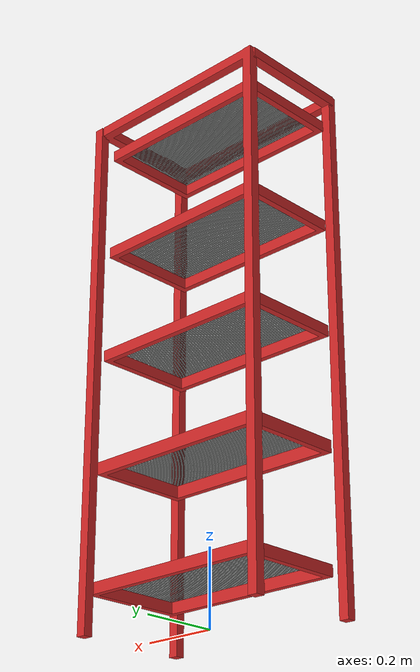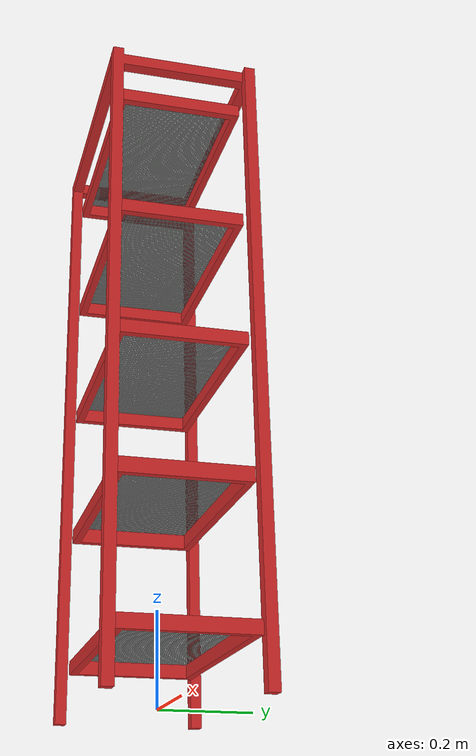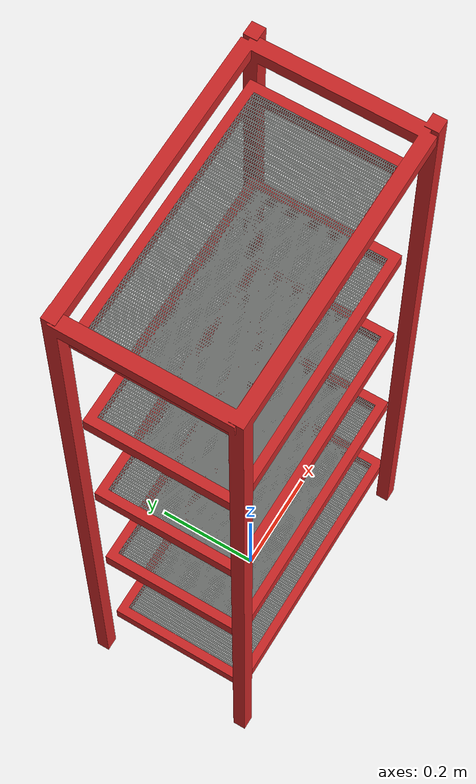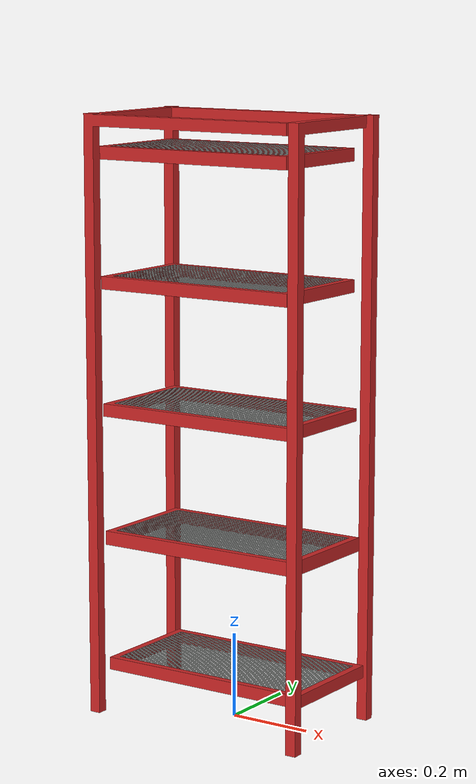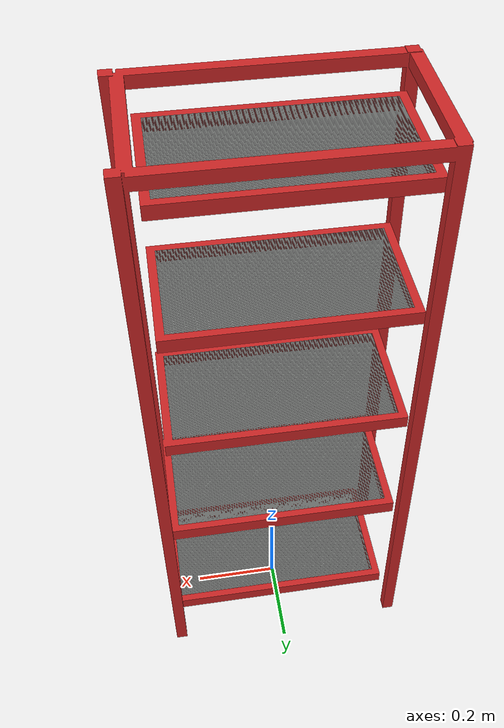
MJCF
<?xml version='1.0' encoding='utf-8'?>
<mujoco model="a0aa8e0c_static_asset_visual_01pct">
  <compiler angle="radian" autolimits="true" meshdir="." texturedir="." />
  <option timestep="0.002" gravity="0 0 -9.81" />
  <default>
    <default class="rack_collision">
      <geom type="box" group="3" rgba="0.85 0.15 0.10 0" contype="1" conaffinity="1" condim="3" friction="0.8 0.08 0.002" />
    </default>
  </default>
  <asset>
    <texture name="object_albedo" type="2d" file="texture_diffuse.png" />
    <material name="object_material" texture="object_albedo" specular="0.25" shininess="0.35" rgba="1 1 1 1" />
    <mesh name="object_visual" file="base_visual_01pct_frame.obj" scale="0.7240948814 0.7421052632 0.6851851852" />
    <mesh name="object_visual_grid" file="base_visual_01pct_grid.obj" scale="0.7240948814 0.7421052632 0.6851851852" />
    <mesh name="object_visual_rims" file="base_visual_01pct_rims.obj" scale="0.7240948814 0.7421052632 0.6851851852" />
    <material name="object_grid_material" rgba="0.42 0.43 0.42 1" specular="0.22" shininess="0.28" />
  </asset>
  <worldbody>
    <body name="object" pos="0 0 0">
      <geom name="object_visual_geom" type="mesh" mesh="object_visual" pos="0 0 -0" euler="1.5707963267948966 0 0" material="object_material" contype="0" conaffinity="0" group="2" />
      <geom name="object_visual_grid_geom" type="mesh" mesh="object_visual_grid" pos="0 0 -0" euler="1.5707963267948966 0 0" material="object_grid_material" contype="0" conaffinity="0" group="2" />
      <geom name="object_visual_rims_geom" type="mesh" mesh="object_visual_rims" pos="0 0 -0" euler="1.5707963267948966 0 0" material="object_material" contype="0" conaffinity="0" group="2" />
      <geom name="rack_collision_shelf_0" class="rack_collision" pos="0.004173418 0 0.118716535" size="0.253882928 0.138167039 0.014839567" />
      <geom name="rack_collision_shelf_1" class="rack_collision" pos="-0.006955697 0 0.422927657" size="0.250405079 0.138167039 0.016323524" />
      <geom name="rack_collision_shelf_2" class="rack_collision" pos="-0.013911393 0 0.727138779" size="0.246927231 0.138167039 0.014839567" />
      <geom name="rack_collision_shelf_3" class="rack_collision" pos="-0.019475951 0 1.023930117" size="0.243449383 0.138167039 0.014839567" />
      <geom name="rack_collision_shelf_4" class="rack_collision" pos="-0.022953799 0 1.320721456" size="0.243449383 0.138167039 0.014839567" />
      <geom name="rack_collision_post_left_front" class="rack_collision" pos="-0.274750018 -0.151646750 0.704879429" size="0.012520254 0.012131740 0.704879429" euler="0 -0.004908496727648441 0" />
      <geom name="rack_collision_post_left_rear" class="rack_collision" pos="-0.274750018 0.151646750 0.704879429" size="0.012520254 0.012131740 0.704879429" euler="0 -0.004908496727648441 0" />
      <geom name="rack_collision_post_right_front" class="rack_collision" pos="0.253882928 -0.151646750 0.704879429" size="0.012520254 0.012131740 0.704879429" euler="0 -0.02454313587455215 0" />
      <geom name="rack_collision_post_right_rear" class="rack_collision" pos="0.253882928 0.151646750 0.704879429" size="0.012520254 0.012131740 0.704879429" euler="0 -0.02454313587455215 0" />
      <geom name="rack_collision_top_front" class="rack_collision" pos="-0.020867090 -0.151646750 1.394919290" size="0.257360776 0.012131740 0.013355610" />
      <geom name="rack_collision_top_rear" class="rack_collision" pos="-0.020867090 0.151646750 1.394919290" size="0.257360776 0.012131740 0.013355610" />
      <geom name="rack_collision_top_left" class="rack_collision" pos="-0.278227866 0 1.394919290" size="0.012520254 0.151646750 0.013355610" />
      <geom name="rack_collision_top_right" class="rack_collision" pos="0.236493686 0 1.394919290" size="0.012520254 0.151646750 0.013355610" />
    </body>
  </worldbody>
</mujoco>
